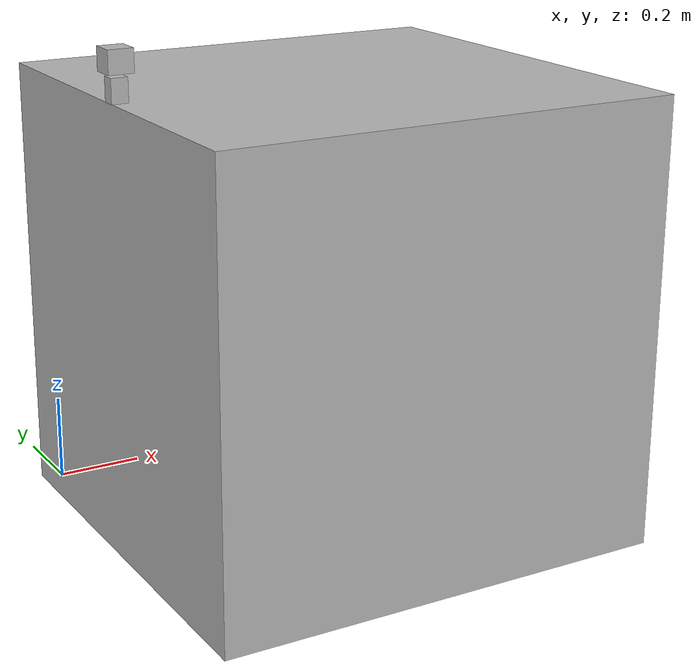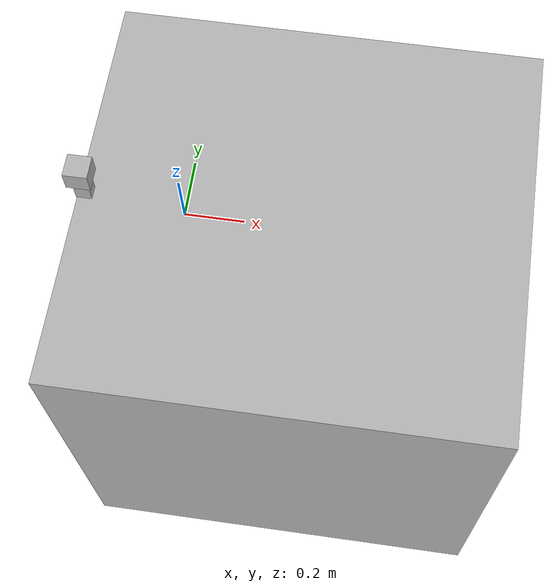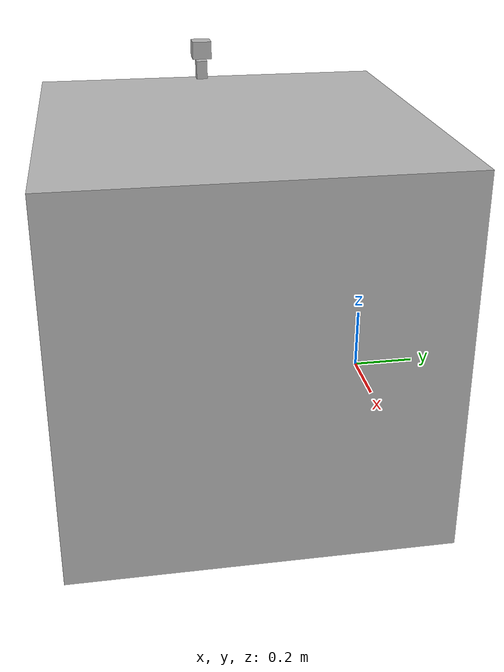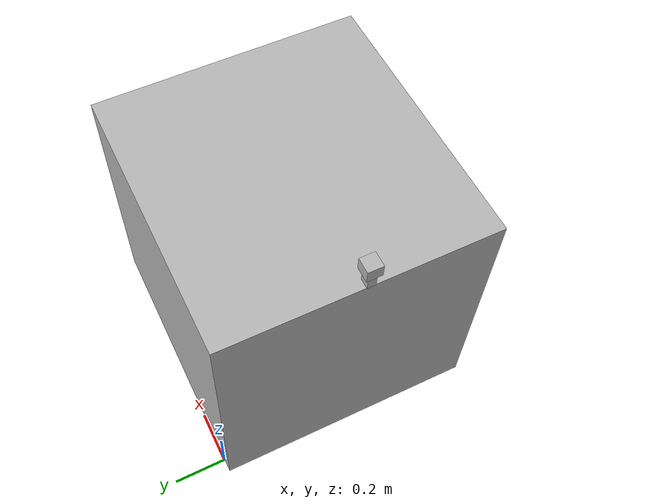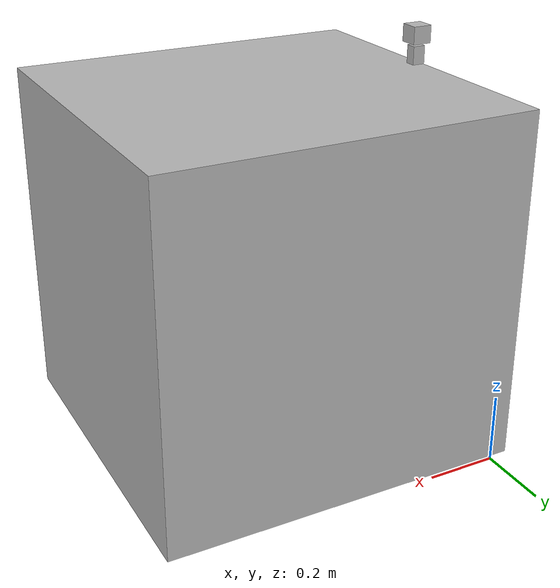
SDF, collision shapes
<?xml version="1.0" ?>
<sdf version="1.7">
  <model name="lidar">

    <link name="estructura">
      <pose>0 0 0 0 0 0</pose>
      <inertial>
      <pose>0.469 -0.5 0.5155 0 0 0</pose>
        <mass>3.527</mass>
        <inertia>
          <ixx>1.068</ixx>
          <iyy>1.068</iyy>
          <izz>1.418</izz>
          <ixy>0</ixy>
          <ixz>0</ixz>
          <iyz>0</iyz>
        </inertia>
      </inertial>
      <collision name="estructura_collision">
      <pose>0.469 -0.5 0.5155 0 0 0</pose>
        <geometry>
          <box>
            <size>1.0405 1.0 1.011</size>
          </box>
        </geometry>
      </collision>
      <visual name="estructura_visual">
        <pose>0 0 0 0 0 0</pose>
        <geometry>
          <mesh>
            <uri>model://RPLiDAR/meshes/estructura.dae</uri>
          </mesh>
        </geometry>
      </visual>
    </link>

    <link name="Motor1">
      <pose>0 0 0 0 0 0</pose>
      <inertial>
      	<pose>-0.0345 -0.5225 1.0475 0 0 0</pose>
        <mass>0.048386</mass>
        <inertia>
          <ixx>0.000013</ixx>
          <iyy>0.000016</iyy>
          <izz>0.000008</izz>
          <ixy>0</ixy>
          <ixz>0</ixz>
          <iyz>0</iyz>
        </inertia>
      </inertial>
      <collision name="Motor1_collision">
      <pose>-0.0345 -0.5225 1.0475 0 0 0</pose>
        <geometry>
          <box>
            <size>0.037 0.032 0.053</size>
          </box>
        </geometry>
      </collision>
      <visual name="Motor1_visual">
        <pose>0 0 0 0 0 0</pose>
        <geometry>
          <mesh>
            <uri>model://RPLiDAR/meshes/Motor.dae</uri>
          </mesh>
        </geometry>
      </visual>
      </link>

    <link name="Sensor">
      <pose>0 0 0 0 0 0</pose>
      <inertial>
      	<pose>-0.0345 -0.5225 1.0955 0 0 0</pose>
        <mass>0.019</mass>
        <inertia>
          <ixx>0.000005</ixx>
          <iyy>0.000007</iyy>
          <izz>0.000010</izz>
          <ixy>0</ixy>
          <ixz>0</ixz>
          <iyz>0</iyz>
        </inertia>
      </inertial>
      <collision name="Sensor_collision">
        <pose>-0.0345 -0.5225 1.1075 0 0 0</pose>
        <geometry>
          <box>
            <size>0.056 0.056 0.051</size>
          </box>
        </geometry>
      </collision>
      <visual name="Sensor_visual">
        <pose>0 0 0 0 0 0</pose>
        <geometry>
          <mesh>
            <uri>model://RPLiDAR/meshes/Sensor.dae</uri>
          </mesh>
        </geometry>
      </visual>

      <!-- Sensor -->
      <sensor type="lidar" name="sensor">
        <pose>-0.0345 -0.5225 1.125 0 0 0</pose>
        <visualize>true</visualize>
        <update_rate>10</update_rate>
        <lidar>

          <scan>
            <horizontal>
              <samples>32</samples>
              <resolution>1</resolution>
              <min_angle>-3.1415</min_angle>
              <max_angle>3.1415</max_angle>
            </horizontal>
          </scan>

          <range>
            <min>0.05</min>
            <max>10</max>
            <resolution>0.03</resolution>
          </range>

        </lidar>
      </sensor>
      </link>

  <!-- Joints -->
    <joint type="revolute" name="joint1">
      <pose>-0.0345 -0.5225 1.021 0 0 0</pose>
      <parent>estructura</parent>
      <child>Motor1</child>
      <axis>
        <xyz>0 0 1</xyz>
        <limit>
          <lower>-3.1415</lower>
          <upper>3.1415</upper>
        </limit>
      </axis>
    </joint>

    <joint type="revolute" name="joint2">
      <pose>-0.0345 -0.5225 1.0625 0 0 0</pose>
      <parent>Motor1</parent>
      <child>Sensor</child>
      <axis>
        <xyz>1 0 0</xyz>
        <limit>
          <lower>-1.57</lower>
          <upper>1.57</upper>
        </limit>
      </axis>
    </joint>

  </model>
</sdf>
